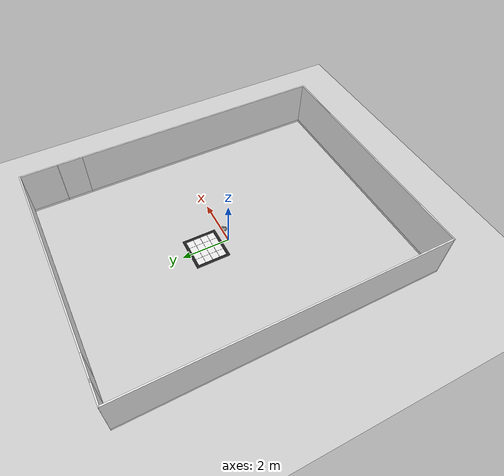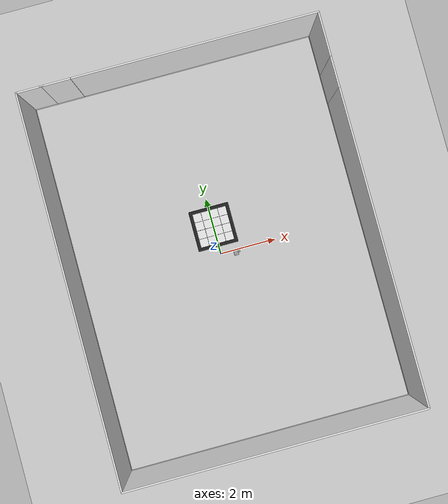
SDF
<sdf version="1.6">
 <world name="megaweb">
  <physics name="default_physics" default="0" type="ode">
   <max_step_size>0.001</max_step_size>
   <real_time_factor>1</real_time_factor>
   <real_time_update_rate>1000</real_time_update_rate>
  </physics>
  <scene><ambient>1 1 1 1</ambient><background>0.7 0.7 0.7 1</background><shadows>1</shadows></scene>
  <model name="ground_plane">
   <static>1</static>
   <link name="link">
    <collision name="collision">
     <geometry><plane><normal>0 0 1</normal><size>100 100</size></plane></geometry>
     <surface><friction><ode><mu>100</mu><mu2>50</mu2></ode></friction></surface>
    </collision>
    <visual name="visual">
     <cast_shadows>0</cast_shadows>
     <geometry><plane><normal>0 0 1</normal><size>100 100</size></plane></geometry>
     <material>
      <script><uri>file://media/materials/scripts/gazebo.material</uri><name>Gazebo/Grey</name></script>
     </material>
    </visual>
   </link>
  </model>
  <light name="floorlight1" type="spot">
   <pose>-3 -3 4 0 -0 0</pose>
   <diffuse>0.8 0.8 0.8 1</diffuse>
   <specular>0.2 0.2 0.2 1</specular>
   <attenuation>
    <range>10</range>
    <constant>0.9</constant>
    <linear>0.2</linear>
    <quadratic>0.001</quadratic>
   </attenuation>
   <spot><inner_angle>0.1</inner_angle><outer_angle>3.14</outer_angle><falloff>0.01</falloff></spot>
   <direction>0 0 -1</direction>
  </light>
  <light name="floorlight2" type="spot">
   <pose>-6 -3 4 0 -0 0</pose>
   <diffuse>0.8 0.8 0.8 1</diffuse>
   <specular>0.2 0.2 0.2 1</specular>
   <attenuation>
    <range>10</range>
    <constant>0.9</constant>
    <linear>0.2</linear>
    <quadratic>0.001</quadratic>
   </attenuation>
   <spot><inner_angle>0.1</inner_angle><outer_angle>3.14</outer_angle><falloff>0.01</falloff></spot>
   <direction>0 0 -1</direction>
  </light>
  <light name="floorlight3" type="spot">
   <pose>-3 -6 4 0 -0 0</pose>
   <diffuse>0.8 0.8 0.8 1</diffuse>
   <specular>0.2 0.2 0.2 1</specular>
   <attenuation>
    <range>10</range>
    <constant>0.9</constant>
    <linear>0.2</linear>
    <quadratic>0.001</quadratic>
   </attenuation>
   <spot><inner_angle>0.1</inner_angle><outer_angle>3.14</outer_angle><falloff>0.01</falloff></spot>
   <direction>0 0 -1</direction>
  </light>
  <light name="floorlight4" type="spot">
   <pose>-6 -6 4 0 -0 0</pose>
   <diffuse>0.8 0.8 0.8 1</diffuse>
   <specular>0.2 0.2 0.2 1</specular>
   <attenuation>
    <range>10</range>
    <constant>0.9</constant>
    <linear>0.2</linear>
    <quadratic>0.001</quadratic>
   </attenuation>
   <spot><inner_angle>0.1</inner_angle><outer_angle>3.14</outer_angle><falloff>0.01</falloff></spot>
   <direction>0 0 -1</direction>
  </light>
  <gravity>0 0 -9.8</gravity>
  <magnetic_field>6e-06 2.3e-05 -4.2e-05</magnetic_field>
  <atmosphere type="adiabatic"/>
  <spherical_coordinates>
   <surface_model>EARTH_WGS84</surface_model>
   <latitude_deg>0</latitude_deg>
   <longitude_deg>0</longitude_deg>
   <elevation>0</elevation>
   <heading_deg>0</heading_deg>
  </spherical_coordinates>
  <model name="full_outside_wall">
   <link name="link">
    <inertial>
     <mass>50</mass>
     <inertia><ixx>1</ixx><ixy>0</ixy><ixz>0</ixz><iyy>1</iyy><iyz>0</iyz><izz>1</izz></inertia>
    </inertial>
    <visual name="x00_13y00_bottom_frame">
     <pose>5.0375 -0.0275 0.05 0 -0 0</pose>
     <geometry><box><size>10.185 0.055 0.1</size></box></geometry>
     <material>
      <script><uri>model://base_materials/color/scripts</uri><name>hsr_color/white</name></script>
     </material>
    </visual>
    <collision name="x00_13y00_collision_bottom_frame">
     <pose>5.0375 -0.0275 0.05 0 -0 0</pose>
     <geometry><box><size>10.185 0.055 0.1</size></box></geometry>
    </collision>
    <visual name="wall_x00_13y00">
     <pose>5.0375 -0.0275 1.095 0 -0 0</pose>
     <geometry><box><size>10.185 0.055 1.99</size></box></geometry>
     <material>
      <script>
       <uri>model://base_materials/wall/scripts</uri>
       <uri>model://base_materials/wall/textures</uri>
       <name>wall/white_noise</name>
      </script>
     </material>
    </visual>
    <collision name="wall_x00_13y00">
     <pose>5.0375 -0.002 1.095 0 -0 0</pose>
     <geometry><box><size>10.08 0.055 1.99</size></box></geometry>
    </collision>
    <visual name="x00y00_15_bottom_frame">
     <pose>-0.0275 6.59 0.05 0 -0 0</pose>
     <geometry><box><size>0.055 13.29 0.1</size></box></geometry>
     <material>
      <script><uri>model://base_materials/color/scripts</uri><name>hsr_color/white</name></script>
     </material>
    </visual>
    <collision name="x00y00_15_collision_bottom_frame">
     <pose>-0.0275 6.59 0.05 0 -0 0</pose>
     <geometry><box><size>0.055 13.29 0.1</size></box></geometry>
    </collision>
    <visual name="wall_x00y00_15">
     <pose>-0.0275 6.59 1.095 0 -0 0</pose>
     <geometry><box><size>0.055 13.29 1.99</size></box></geometry>
     <material>
      <script>
       <uri>model://base_materials/wall/scripts</uri>
       <uri>model://base_materials/wall/textures</uri>
       <name>wall/white_noise</name>
      </script>
     </material>
    </visual>
    <collision name="wall_x00y00_x00y15">
     <pose>-0.002 6.59 1.095 0 -0 0</pose>
     <geometry><box><size>0.002 13.29 1.99</size></box></geometry>
    </collision>
    <visual name="x13y00_12_bottom_frame">
     <pose>10.1025 5.3725 0.05 0 -0 0</pose>
     <geometry><box><size>0.055 10.855 0.1</size></box></geometry>
     <material>
      <script><uri>model://base_materials/color/scripts</uri><name>hsr_color/white</name></script>
     </material>
    </visual>
    <collision name="x13y00_12_collision_bottom_frame">
     <pose>10.1025 5.3725 0.05 0 -0 0</pose>
     <geometry><box><size>0.055 10.855 0.1</size></box></geometry>
    </collision>
    <visual name="wall_x13y00_12">
     <pose>10.1025 5.3725 1.095 0 -0 0</pose>
     <geometry><box><size>0.055 10.855 1.99</size></box></geometry>
     <material>
      <script>
       <uri>model://base_materials/wall/scripts</uri>
       <uri>model://base_materials/wall/textures</uri>
       <name>wall/white_noise</name>
      </script>
     </material>
    </visual>
    <collision name="wall_x13y00_12">
     <pose>10.1025 5.3725 1.095 0 -0 0</pose>
     <geometry><box><size>0.055 10.855 1.99</size></box></geometry>
    </collision>
    <visual name="x13y14_16_bottom_frame">
     <pose>10.1025 12.4675 0.05 0 -0 0</pose>
     <geometry><box><size>0.055 1.535 0.1</size></box></geometry>
     <material>
      <script><uri>model://base_materials/color/scripts</uri><name>hsr_color/white</name></script>
     </material>
    </visual>
    <collision name="x13y14_16_collision_bottom_frame">
     <pose>10.1025 12.4675 0.05 0 -0 0</pose>
     <geometry><box><size>0.055 1.535 0.1</size></box></geometry>
    </collision>
    <visual name="wall_x13y14_x13y16">
     <pose>10.1025 12.4675 1.095 0 -0 0</pose>
     <geometry><box><size>0.055 1.535 1.99</size></box></geometry>
     <material>
      <script>
       <uri>model://base_materials/wall/scripts</uri>
       <uri>model://base_materials/wall/textures</uri>
       <name>wall/white_noise</name>
      </script>
     </material>
    </visual>
    <collision name="wall_x13y14_x13y16">
     <pose>10.1025 12.4675 1.095 0 -0 0</pose>
     <geometry><box><size>0.055 1.535 1.99</size></box></geometry>
    </collision>
    <visual name="x00_01y16_bottom_frame">
     <pose>0.4225 13.2075 0.05 0 -0 0</pose>
     <geometry><box><size>0.955 0.055 0.1</size></box></geometry>
     <material>
      <script><uri>model://base_materials/color/scripts</uri><name>hsr_color/white</name></script>
     </material>
    </visual>
    <collision name="x00_01y16_collision_bottom_frame">
     <pose>0.4225 13.2075 0.05 0 -0 0</pose>
     <geometry><box><size>0.955 0.055 0.1</size></box></geometry>
    </collision>
    <visual name="wall_x00_01y16">
     <pose>0.4225 13.2075 1.095 0 -0 0</pose>
     <geometry><box><size>0.955 0.055 1.99</size></box></geometry>
     <material>
      <script>
       <uri>model://base_materials/wall/scripts</uri>
       <uri>model://base_materials/wall/textures</uri>
       <name>wall/white_noise</name>
      </script>
     </material>
    </visual>
    <collision name="wall_x00_x01y16">
     <pose>0.4225 13.2075 1.095 0 -0 0</pose>
     <geometry><box><size>0.955 0.055 1.99</size></box></geometry>
    </collision>
    <visual name="x03_13y16_bottom_frame">
     <pose>5.965 13.2075 0.05 0 -0 0</pose>
     <geometry><box><size>8.33 0.05 0.1</size></box></geometry>
     <material>
      <script><uri>model://base_materials/color/scripts</uri><name>hsr_color/white</name></script>
     </material>
    </visual>
    <collision name="x03_13y16_collision_bottom_frame">
     <pose>5.965 13.2075 0.05 0 -0 0</pose>
     <geometry><box><size>8.33 0.05 0.1</size></box></geometry>
    </collision>
    <visual name="wall_x03_13y16">
     <pose>5.965 13.2075 1.095 0 -0 0</pose>
     <geometry><box><size>8.33 0.055 1.99</size></box></geometry>
     <material>
      <script>
       <uri>model://base_materials/wall/scripts</uri>
       <uri>model://base_materials/wall/textures</uri>
       <name>wall/white_noise</name>
      </script>
     </material>
    </visual>
    <collision name="wall_x03_13y16">
     <pose>5.965 13.2075 1.095 0 -0 0</pose>
     <geometry><box><size>8.33 0.055 1.99</size></box></geometry>
    </collision>
    <velocity_decay><linear>0</linear><angular>0</angular></velocity_decay>
   </link>
   <static>1</static>
   <pose>-5 -6.5 0 0 -0 0</pose>
  </model>
  <model name="full_wall_55_900_2090">
   <link name="link">
    <inertial>
     <mass>50</mass>
     <inertia><ixx>1</ixx><ixy>0</ixy><ixz>0</ixz><iyy>1</iyy><iyz>0</iyz><izz>1</izz></inertia>
    </inertial>
    <visual name="bottom_frame">
     <pose>0 0 0.05 0 -0 0</pose>
     <geometry><box><size>0.055 1.04 0.1</size></box></geometry>
     <material>
      <script><uri>model://base_materials/color/scripts</uri><name>hsr_color/white</name></script>
     </material>
    </visual>
    <collision name="collision_bottom_frame">
     <pose>0 0 0.05 0 -0 0</pose>
     <geometry><box><size>0.055 1.04 0.1</size></box></geometry>
    </collision>
    <visual name="wall">
     <pose>0 0 1.095 0 -0 0</pose>
     <geometry><box><size>0.055 1.04 1.99</size></box></geometry>
     <material>
      <script>
       <uri>model://base_materials/wall/scripts</uri>
       <uri>model://base_materials/wall/textures</uri>
       <name>wall/white_noise</name>
      </script>
     </material>
    </visual>
    <collision name="collision_wall">
     <pose>0 0 1.095 0 -0 0</pose>
     <geometry><box><size>0.055 1.04 1.99</size></box></geometry>
    </collision>
    <velocity_decay><linear>0</linear><angular>0</angular></velocity_decay>
   </link>
   <static>1</static>
   <pose>5.1 4.67156 0 0 -0 0</pose>
  </model>
  <model name="full_wall_55_900_2090_0">
   <link name="link">
    <inertial>
     <mass>50</mass>
     <inertia><ixx>1</ixx><ixy>0</ixy><ixz>0</ixz><iyy>1</iyy><iyz>0</iyz><izz>1</izz></inertia>
    </inertial>
    <visual name="bottom_frame">
     <pose>0 0 0.05 0 -0 0</pose>
     <geometry><box><size>0.055 1.04 0.1</size></box></geometry>
     <material>
      <script><uri>model://base_materials/color/scripts</uri><name>hsr_color/white</name></script>
     </material>
    </visual>
    <collision name="collision_bottom_frame">
     <pose>0 0 0.05 0 -0 0</pose>
     <geometry><box><size>0.055 1.04 0.1</size></box></geometry>
    </collision>
    <visual name="wall">
     <pose>0 0 1.095 0 -0 0</pose>
     <geometry><box><size>0.055 1.04 1.99</size></box></geometry>
     <material>
      <script>
       <uri>model://base_materials/wall/scripts</uri>
       <uri>model://base_materials/wall/textures</uri>
       <name>wall/white_noise</name>
      </script>
     </material>
    </visual>
    <collision name="collision_wall">
     <pose>0 0 1.095 0 -0 0</pose>
     <geometry><box><size>0.055 1.04 1.99</size></box></geometry>
    </collision>
    <velocity_decay><linear>0</linear><angular>0</angular></velocity_decay>
   </link>
   <static>1</static>
   <pose>-3.72484 6.70714 0 0 -0 1.57</pose>
  </model>
  <model name="unit_box">
   <static>1</static>
   <pose>0 1 0.0005 -1e-05 0 0</pose>
   <link name="link">
    <inertial>
     <mass>1</mass>
     <inertia>
      <ixx>0.166667</ixx>
      <ixy>0</ixy>
      <ixz>0</ixz>
      <iyy>0.166667</iyy>
      <iyz>0</iyz>
      <izz>0.166667</izz>
     </inertia>
    </inertial>
    <visual name="visual">
     <geometry><box><size>1.45 1.45 0.01</size></box></geometry>
     <material>
      <script>
       <name>Gazebo/Black</name>
       <uri>/usr/share/gazebo-7/media/materials/scripts/gazebo.material</uri>
      </script>
     </material>
    </visual>
   </link>
  </model>
  <model name="unit_box_0">
   <static>1</static>
   <pose>0.4575 1.4575 0.001 0 -0 0</pose>
   <link name="link">
    <inertial>
     <mass>1</mass>
     <inertia>
      <ixx>0.166667</ixx>
      <ixy>0</ixy>
      <ixz>0</ixz>
      <iyy>0.166667</iyy>
      <iyz>0</iyz>
      <izz>0.166667</izz>
     </inertia>
    </inertial>
    <visual name="visual">
     <geometry><box><size>0.3 0.3 0.01</size></box></geometry>
     <material>
      <script>
       <name>Gazebo/White</name>
       <uri>/usr/share/gazebo-7/media/materials/scripts/gazebo.material</uri>
      </script>
     </material>
    </visual>
   </link>
  </model>
  <model name="unit_box_0_clone">
   <static>1</static>
   <pose>0.4575 1.1525 0.001 0 -0 0</pose>
   <link name="link">
    <inertial>
     <mass>1</mass>
     <inertia>
      <ixx>0.166667</ixx>
      <ixy>0</ixy>
      <ixz>0</ixz>
      <iyy>0.166667</iyy>
      <iyz>0</iyz>
      <izz>0.166667</izz>
     </inertia>
    </inertial>
    <visual name="visual">
     <geometry><box><size>0.3 0.3 0.01</size></box></geometry>
     <material>
      <script>
       <name>Gazebo/White</name>
       <uri>/usr/share/gazebo-7/media/materials/scripts/gazebo.material</uri>
      </script>
     </material>
    </visual>
   </link>
  </model>
  <model name="unit_box_0_clone_0">
   <static>1</static>
   <pose>0.4575 0.8475 0.001 0 -0 0</pose>
   <link name="link">
    <inertial>
     <mass>1</mass>
     <inertia>
      <ixx>0.166667</ixx>
      <ixy>0</ixy>
      <ixz>0</ixz>
      <iyy>0.166667</iyy>
      <iyz>0</iyz>
      <izz>0.166667</izz>
     </inertia>
    </inertial>
    <visual name="visual">
     <geometry><box><size>0.3 0.3 0.01</size></box></geometry>
     <material>
      <script>
       <name>Gazebo/White</name>
       <uri>/usr/share/gazebo-7/media/materials/scripts/gazebo.material</uri>
      </script>
     </material>
    </visual>
   </link>
  </model>
  <model name="unit_box_0_clone_1">
   <static>1</static>
   <pose>0.4575 0.5425 0.001 0 -0 0</pose>
   <link name="link">
    <inertial>
     <mass>1</mass>
     <inertia>
      <ixx>0.166667</ixx>
      <ixy>0</ixy>
      <ixz>0</ixz>
      <iyy>0.166667</iyy>
      <iyz>0</iyz>
      <izz>0.166667</izz>
     </inertia>
    </inertial>
    <visual name="visual">
     <geometry><box><size>0.3 0.3 0.01</size></box></geometry>
     <material>
      <script>
       <name>Gazebo/White</name>
       <uri>/usr/share/gazebo-7/media/materials/scripts/gazebo.material</uri>
      </script>
     </material>
    </visual>
   </link>
  </model>
  <model name="unit_box_0_clone_2">
   <static>1</static>
   <pose>0.1525 1.4575 0.001 0 -0 0</pose>
   <link name="link">
    <inertial>
     <mass>1</mass>
     <inertia>
      <ixx>0.166667</ixx>
      <ixy>0</ixy>
      <ixz>0</ixz>
      <iyy>0.166667</iyy>
      <iyz>0</iyz>
      <izz>0.166667</izz>
     </inertia>
    </inertial>
    <visual name="visual">
     <geometry><box><size>0.3 0.3 0.01</size></box></geometry>
     <material>
      <script>
       <name>Gazebo/White</name>
       <uri>/usr/share/gazebo-7/media/materials/scripts/gazebo.material</uri>
      </script>
     </material>
    </visual>
   </link>
  </model>
  <model name="unit_box_0_clone_3">
   <static>1</static>
   <pose>0.1525 1.1525 0.001 0 -0 0</pose>
   <link name="link">
    <inertial>
     <mass>1</mass>
     <inertia>
      <ixx>0.166667</ixx>
      <ixy>0</ixy>
      <ixz>0</ixz>
      <iyy>0.166667</iyy>
      <iyz>0</iyz>
      <izz>0.166667</izz>
     </inertia>
    </inertial>
    <visual name="visual">
     <geometry><box><size>0.3 0.3 0.01</size></box></geometry>
     <material>
      <script>
       <name>Gazebo/White</name>
       <uri>/usr/share/gazebo-7/media/materials/scripts/gazebo.material</uri>
      </script>
     </material>
    </visual>
   </link>
  </model>
  <model name="unit_box_0_clone_4">
   <static>1</static>
   <pose>0.1525 0.8475 0.001 0 -0 0</pose>
   <link name="link">
    <inertial>
     <mass>1</mass>
     <inertia>
      <ixx>0.166667</ixx>
      <ixy>0</ixy>
      <ixz>0</ixz>
      <iyy>0.166667</iyy>
      <iyz>0</iyz>
      <izz>0.166667</izz>
     </inertia>
    </inertial>
    <visual name="visual">
     <geometry><box><size>0.3 0.3 0.01</size></box></geometry>
     <material>
      <script>
       <name>Gazebo/White</name>
       <uri>/usr/share/gazebo-7/media/materials/scripts/gazebo.material</uri>
      </script>
     </material>
    </visual>
   </link>
  </model>
  <model name="unit_box_0_clone_5">
   <static>1</static>
   <pose>0.1525 0.5425 0.001 0 -0 0</pose>
   <link name="link">
    <inertial>
     <mass>1</mass>
     <inertia>
      <ixx>0.166667</ixx>
      <ixy>0</ixy>
      <ixz>0</ixz>
      <iyy>0.166667</iyy>
      <iyz>0</iyz>
      <izz>0.166667</izz>
     </inertia>
    </inertial>
    <visual name="visual">
     <geometry><box><size>0.3 0.3 0.01</size></box></geometry>
     <material>
      <script>
       <name>Gazebo/White</name>
       <uri>/usr/share/gazebo-7/media/materials/scripts/gazebo.material</uri>
      </script>
     </material>
    </visual>
   </link>
  </model>
  <model name="unit_box_0_clone_6">
   <static>1</static>
   <pose>-0.1525 1.4575 0.001 0 -0 0</pose>
   <link name="link">
    <inertial>
     <mass>1</mass>
     <inertia>
      <ixx>0.166667</ixx>
      <ixy>0</ixy>
      <ixz>0</ixz>
      <iyy>0.166667</iyy>
      <iyz>0</iyz>
      <izz>0.166667</izz>
     </inertia>
    </inertial>
    <visual name="visual">
     <geometry><box><size>0.3 0.3 0.01</size></box></geometry>
     <material>
      <script>
       <name>Gazebo/White</name>
       <uri>/usr/share/gazebo-7/media/materials/scripts/gazebo.material</uri>
      </script>
     </material>
    </visual>
   </link>
  </model>
  <model name="unit_box_0_clone_7">
   <static>1</static>
   <pose>-0.1525 1.1525 0.001 0 -0 0</pose>
   <link name="link">
    <inertial>
     <mass>1</mass>
     <inertia>
      <ixx>0.166667</ixx>
      <ixy>0</ixy>
      <ixz>0</ixz>
      <iyy>0.166667</iyy>
      <iyz>0</iyz>
      <izz>0.166667</izz>
     </inertia>
    </inertial>
    <visual name="visual">
     <geometry><box><size>0.3 0.3 0.01</size></box></geometry>
     <material>
      <script>
       <name>Gazebo/White</name>
       <uri>/usr/share/gazebo-7/media/materials/scripts/gazebo.material</uri>
      </script>
     </material>
    </visual>
   </link>
  </model>
  <model name="unit_box_0_clone_8">
   <static>1</static>
   <pose>-0.1525 0.8475 0.001 0 -0 0</pose>
   <link name="link">
    <inertial>
     <mass>1</mass>
     <inertia>
      <ixx>0.166667</ixx>
      <ixy>0</ixy>
      <ixz>0</ixz>
      <iyy>0.166667</iyy>
      <iyz>0</iyz>
      <izz>0.166667</izz>
     </inertia>
    </inertial>
    <visual name="visual">
     <geometry><box><size>0.3 0.3 0.01</size></box></geometry>
     <material>
      <script>
       <name>Gazebo/White</name>
       <uri>/usr/share/gazebo-7/media/materials/scripts/gazebo.material</uri>
      </script>
     </material>
    </visual>
   </link>
  </model>
  <model name="unit_box_0_clone_9">
   <static>1</static>
   <pose>-0.1525 0.5425 0.001 0 -0 0</pose>
   <link name="link">
    <inertial>
     <mass>1</mass>
     <inertia>
      <ixx>0.166667</ixx>
      <ixy>0</ixy>
      <ixz>0</ixz>
      <iyy>0.166667</iyy>
      <iyz>0</iyz>
      <izz>0.166667</izz>
     </inertia>
    </inertial>
    <visual name="visual">
     <geometry><box><size>0.3 0.3 0.01</size></box></geometry>
     <material>
      <script>
       <name>Gazebo/White</name>
       <uri>/usr/share/gazebo-7/media/materials/scripts/gazebo.material</uri>
      </script>
     </material>
    </visual>
   </link>
  </model>
  <model name="unit_box_0_clone_10">
   <static>1</static>
   <pose>-0.4575 1.4575 0.001 0 -0 0</pose>
   <link name="link">
    <inertial>
     <mass>1</mass>
     <inertia>
      <ixx>0.166667</ixx>
      <ixy>0</ixy>
      <ixz>0</ixz>
      <iyy>0.166667</iyy>
      <iyz>0</iyz>
      <izz>0.166667</izz>
     </inertia>
    </inertial>
    <visual name="visual">
     <geometry><box><size>0.3 0.3 0.01</size></box></geometry>
     <material>
      <script>
       <name>Gazebo/White</name>
       <uri>/usr/share/gazebo-7/media/materials/scripts/gazebo.material</uri>
      </script>
     </material>
    </visual>
   </link>
  </model>
  <model name="unit_box_0_clone_11">
   <static>1</static>
   <pose>-0.4575 1.1525 0.001 0 -0 0</pose>
   <link name="link">
    <inertial>
     <mass>1</mass>
     <inertia>
      <ixx>0.166667</ixx>
      <ixy>0</ixy>
      <ixz>0</ixz>
      <iyy>0.166667</iyy>
      <iyz>0</iyz>
      <izz>0.166667</izz>
     </inertia>
    </inertial>
    <visual name="visual">
     <geometry><box><size>0.3 0.3 0.01</size></box></geometry>
     <material>
      <script>
       <name>Gazebo/White</name>
       <uri>/usr/share/gazebo-7/media/materials/scripts/gazebo.material</uri>
      </script>
     </material>
    </visual>
   </link>
  </model>
  <model name="unit_box_0_clone_12">
   <static>1</static>
   <pose>-0.4575 0.8475 0.001 0 -0 0</pose>
   <link name="link">
    <inertial>
     <mass>1</mass>
     <inertia>
      <ixx>0.166667</ixx>
      <ixy>0</ixy>
      <ixz>0</ixz>
      <iyy>0.166667</iyy>
      <iyz>0</iyz>
      <izz>0.166667</izz>
     </inertia>
    </inertial>
    <visual name="visual">
     <geometry><box><size>0.3 0.3 0.01</size></box></geometry>
     <material>
      <script>
       <name>Gazebo/White</name>
       <uri>/usr/share/gazebo-7/media/materials/scripts/gazebo.material</uri>
      </script>
     </material>
    </visual>
   </link>
  </model>
  <model name="unit_box_0_clone_13">
   <static>1</static>
   <pose>-0.4575 0.5425 0.001 0 -0 0</pose>
   <link name="link">
    <inertial>
     <mass>1</mass>
     <inertia>
      <ixx>0.166667</ixx>
      <ixy>0</ixy>
      <ixz>0</ixz>
      <iyy>0.166667</iyy>
      <iyz>0</iyz>
      <izz>0.166667</izz>
     </inertia>
    </inertial>
    <visual name="visual">
     <geometry><box><size>0.3 0.3 0.01</size></box></geometry>
     <material>
      <script>
       <name>Gazebo/White</name>
       <uri>/usr/share/gazebo-7/media/materials/scripts/gazebo.material</uri>
      </script>
     </material>
    </visual>
   </link>
  </model>
  <model name="first_aid_box">
   <link name="link">
    <inertial>
     <pose>0.034 0 0.04 1.57 -0 0</pose>
     <mass>0.3</mass>
     <inertia><ixx>0.00058</ixx><ixy>0</ixy><ixz>0</ixz><iyy>0.00058</iyy><iyz>0</iyz><izz>0.00019</izz></inertia>
    </inertial>
    <velocity_decay><linear>0</linear><angular>0</angular></velocity_decay>
    <visual name="handle_top">
     <pose>0.11 0 0.085 0 -0 0</pose>
     <geometry><box><size>0.068 0.068 0.002</size></box></geometry>
     <material>
      <script><uri>model://base_materials/color/scripts</uri><name>hsr_color/grey</name></script>
      <shader type="pixel"><normal_map>__default__</normal_map></shader>
      <ambient>1 1 1 1</ambient>
      <diffuse>0.5 0.5 0.5 1</diffuse>
      <specular>0 0 0 1</specular>
      <emissive>0 0 0 1</emissive>
      <lighting>0</lighting>
     </material>
    </visual>
    <visual name="handle_bottom">
     <pose>0.11 0 0.016 0 -0 0</pose>
     <geometry><box><size>0.068 0.068 0.002</size></box></geometry>
     <material>
      <script><uri>model://base_materials/color/scripts</uri><name>hsr_color/grey</name></script>
      <shader type="pixel"><normal_map>__default__</normal_map></shader>
      <ambient>1 1 1 1</ambient>
      <diffuse>0.5 0.5 0.5 1</diffuse>
      <specular>0 0 0 1</specular>
      <emissive>0 0 0 1</emissive>
      <lighting>0</lighting>
     </material>
    </visual>
    <visual name="marker_0513">
     <pose>0.11 0 0.0861 0 -0 3.1415</pose>
     <geometry><box><size>0.045 0.045 0.0001</size></box></geometry>
     <material>
      <script>
       <uri>model://first_aid_box/marker/0513/scripts</uri>
       <uri>model://first_aid_box/marker/0513/textures</uri>
       <name>Marker/0513</name>
      </script>
      <shader type="pixel"><normal_map>__default__</normal_map></shader>
      <ambient>1 1 1 1</ambient>
      <diffuse>1 1 1 1</diffuse>
      <specular>0 0 0 1</specular>
      <emissive>0 0 0 1</emissive>
      <lighting>0</lighting>
     </material>
    </visual>
    <visual name="handle_front">
     <pose>0.138 0 0.05 0 -0 0</pose>
     <geometry><box><size>0.014 0.068 0.068</size></box></geometry>
     <material>
      <script><uri>model://base_materials/color/scripts</uri><name>hsr_color/grey</name></script>
      <shader type="pixel"><normal_map>__default__</normal_map></shader>
      <ambient>1 1 1 1</ambient>
      <diffuse>0.5 0.5 0.5 1</diffuse>
      <specular>0 0 0 1</specular>
      <emissive>0 0 0 1</emissive>
      <lighting>0</lighting>
     </material>
    </visual>
    <visual name="marker_0502">
     <pose>0.145 0 0.05 0 -0 0</pose>
     <geometry><box><size>0.0001 0.045 0.045</size></box></geometry>
     <material>
      <script>
       <uri>model://first_aid_box/marker/0502/scripts</uri>
       <uri>model://first_aid_box/marker/0502/textures</uri>
       <name>Marker/0502</name>
      </script>
      <shader type="pixel"><normal_map>__default__</normal_map></shader>
      <ambient>1 1 1 1</ambient>
      <diffuse>1 1 1 1</diffuse>
      <specular>0 0 0 1</specular>
      <emissive>0 0 0 1</emissive>
      <lighting>0</lighting>
     </material>
    </visual>
    <visual name="box_front">
     <pose>0.076 0 0.043 0 -0 0</pose>
     <geometry><box><size>0.001 0.218 0.085</size></box></geometry>
     <material>
      <script><uri>model://base_materials/color/scripts</uri><name>hsr_color/grey</name></script>
      <shader type="pixel"><normal_map>__default__</normal_map></shader>
      <ambient>1 1 1 1</ambient>
      <diffuse>0.8 0.8 0.8 1</diffuse>
      <specular>0.9 0.9 0.9 1</specular>
      <emissive>0 0 0 1</emissive>
      <lighting>0</lighting>
     </material>
    </visual>
    <visual name="box_back">
     <pose>-0.076 0 0.043 0 -0 0</pose>
     <geometry><box><size>0.001 0.218 0.085</size></box></geometry>
     <material>
      <script><uri>model://base_materials/color/scripts</uri><name>hsr_color/grey</name></script>
      <shader type="pixel"><normal_map>__default__</normal_map></shader>
      <ambient>1 1 1 1</ambient>
      <diffuse>0.8 0.8 0.8 1</diffuse>
      <specular>0.9 0.9 0.9 1</specular>
      <emissive>0 0 0 1</emissive>
      <lighting>0</lighting>
     </material>
    </visual>
    <visual name="box_right">
     <pose>0 0.1095 0.043 0 -0 0</pose>
     <geometry><box><size>0.153 0.001 0.085</size></box></geometry>
     <material>
      <script><uri>model://base_materials/color/scripts</uri><name>hsr_color/grey</name></script>
      <shader type="pixel"><normal_map>__default__</normal_map></shader>
      <ambient>1 1 1 1</ambient>
      <diffuse>0.8 0.8 0.8 1</diffuse>
      <specular>0.9 0.9 0.9 1</specular>
      <emissive>0 0 0 1</emissive>
      <lighting>0</lighting>
     </material>
    </visual>
    <visual name="box_left">
     <pose>0 -0.1095 0.043 0 -0 0</pose>
     <geometry><box><size>0.153 0.001 0.085</size></box></geometry>
     <material>
      <script><uri>model://base_materials/color/scripts</uri><name>hsr_color/grey</name></script>
      <shader type="pixel"><normal_map>__default__</normal_map></shader>
      <ambient>1 1 1 1</ambient>
      <diffuse>0.8 0.8 0.8 1</diffuse>
      <specular>0.9 0.9 0.9 1</specular>
      <emissive>0 0 0 1</emissive>
      <lighting>0</lighting>
     </material>
    </visual>
    <visual name="box_bottom">
     <pose>0 0 0.001 0 -0 0</pose>
     <geometry><box><size>0.151 0.218 0.002</size></box></geometry>
     <material>
      <script><uri>model://base_materials/color/scripts</uri><name>hsr_color/grey</name></script>
      <shader type="pixel"><normal_map>__default__</normal_map></shader>
      <ambient>1 1 1 1</ambient>
      <diffuse>0.8 0.8 0.8 1</diffuse>
      <specular>0.9 0.9 0.9 1</specular>
      <emissive>0 0 0 1</emissive>
      <lighting>0</lighting>
     </material>
    </visual>
    <collision name="collision_handle_top">
     <pose>0.11 0 0.085 0 -0 0</pose>
     <geometry><box><size>0.068 0.068 0.002</size></box></geometry>
     <surface>
      <friction>
       <ode><mu>1</mu><mu2>1</mu2><fdir1>0 0 0</fdir1><slip1>0</slip1><slip2>0</slip2></ode>
       <torsional>
        <coefficient>1</coefficient>
        <patch_radius>0</patch_radius>
        <surface_radius>0</surface_radius>
        <use_patch_radius>1</use_patch_radius>
        <ode><slip>0</slip></ode>
       </torsional>
      </friction>
      <bounce><restitution_coefficient>0.2</restitution_coefficient><threshold>0</threshold></bounce>
      <contact>
       <collide_without_contact>0</collide_without_contact>
       <collide_without_contact_bitmask>1</collide_without_contact_bitmask>
       <collide_bitmask>1</collide_bitmask>
       <ode>
        <soft_cfm>0</soft_cfm>
        <soft_erp>0.2</soft_erp>
        <kp>1e+13</kp>
        <kd>1</kd>
        <max_vel>10</max_vel>
        <min_depth>0</min_depth>
       </ode>
       <bullet>
        <split_impulse>1</split_impulse>
        <split_impulse_penetration_threshold>-0.01</split_impulse_penetration_threshold>
        <soft_cfm>0</soft_cfm>
        <soft_erp>0.2</soft_erp>
        <kp>1e+13</kp>
        <kd>1</kd>
       </bullet>
      </contact>
     </surface>
    </collision>
    <collision name="collision_handle_bottom">
     <pose>0.11 0 0.016 0 -0 0</pose>
     <geometry><box><size>0.068 0.068 0.002</size></box></geometry>
     <surface>
      <friction>
       <ode><mu>1</mu><mu2>1</mu2><fdir1>0 0 0</fdir1><slip1>0</slip1><slip2>0</slip2></ode>
       <torsional>
        <coefficient>1</coefficient>
        <patch_radius>0</patch_radius>
        <surface_radius>0</surface_radius>
        <use_patch_radius>1</use_patch_radius>
        <ode><slip>0</slip></ode>
       </torsional>
      </friction>
      <bounce><restitution_coefficient>0.2</restitution_coefficient><threshold>0</threshold></bounce>
      <contact>
       <collide_without_contact>0</collide_without_contact>
       <collide_without_contact_bitmask>1</collide_without_contact_bitmask>
       <collide_bitmask>1</collide_bitmask>
       <ode>
        <soft_cfm>0</soft_cfm>
        <soft_erp>0.2</soft_erp>
        <kp>1e+13</kp>
        <kd>1</kd>
        <max_vel>10</max_vel>
        <min_depth>0</min_depth>
       </ode>
       <bullet>
        <split_impulse>1</split_impulse>
        <split_impulse_penetration_threshold>-0.01</split_impulse_penetration_threshold>
        <soft_cfm>0</soft_cfm>
        <soft_erp>0.2</soft_erp>
        <kp>1e+13</kp>
        <kd>1</kd>
       </bullet>
      </contact>
     </surface>
    </collision>
    <collision name="collision_box_front">
     <pose>0.076 0 0.043 0 -0 0</pose>
     <geometry><box><size>0.001 0.218 0.085</size></box></geometry>
     <surface>
      <friction>
       <ode><mu>1</mu><mu2>1</mu2><fdir1>0 0 0</fdir1><slip1>0</slip1><slip2>0</slip2></ode>
       <torsional>
        <coefficient>1</coefficient>
        <patch_radius>0</patch_radius>
        <surface_radius>0</surface_radius>
        <use_patch_radius>1</use_patch_radius>
        <ode><slip>0</slip></ode>
       </torsional>
      </friction>
      <bounce><restitution_coefficient>0.2</restitution_coefficient><threshold>0</threshold></bounce>
      <contact>
       <collide_without_contact>0</collide_without_contact>
       <collide_without_contact_bitmask>1</collide_without_contact_bitmask>
       <collide_bitmask>1</collide_bitmask>
       <ode>
        <soft_cfm>0</soft_cfm>
        <soft_erp>0.2</soft_erp>
        <kp>1e+13</kp>
        <kd>1</kd>
        <max_vel>10</max_vel>
        <min_depth>0</min_depth>
       </ode>
       <bullet>
        <split_impulse>1</split_impulse>
        <split_impulse_penetration_threshold>-0.01</split_impulse_penetration_threshold>
        <soft_cfm>0</soft_cfm>
        <soft_erp>0.2</soft_erp>
        <kp>1e+13</kp>
        <kd>1</kd>
       </bullet>
      </contact>
     </surface>
    </collision>
    <collision name="collision_handle_front">
     <pose>0.138 0 0.05 0 -0 0</pose>
     <geometry><box><size>0.014 0.068 0.068</size></box></geometry>
     <surface>
      <friction>
       <ode><mu>1</mu><mu2>1</mu2><fdir1>0 0 0</fdir1><slip1>0</slip1><slip2>0</slip2></ode>
       <torsional>
        <coefficient>1</coefficient>
        <patch_radius>0</patch_radius>
        <surface_radius>0</surface_radius>
        <use_patch_radius>1</use_patch_radius>
        <ode><slip>0</slip></ode>
       </torsional>
      </friction>
      <bounce><restitution_coefficient>0.2</restitution_coefficient><threshold>0</threshold></bounce>
      <contact>
       <collide_without_contact>0</collide_without_contact>
       <collide_without_contact_bitmask>1</collide_without_contact_bitmask>
       <collide_bitmask>1</collide_bitmask>
       <ode>
        <soft_cfm>0</soft_cfm>
        <soft_erp>0.2</soft_erp>
        <kp>1e+13</kp>
        <kd>1</kd>
        <max_vel>10</max_vel>
        <min_depth>0</min_depth>
       </ode>
       <bullet>
        <split_impulse>1</split_impulse>
        <split_impulse_penetration_threshold>-0.01</split_impulse_penetration_threshold>
        <soft_cfm>0</soft_cfm>
        <soft_erp>0.2</soft_erp>
        <kp>1e+13</kp>
        <kd>1</kd>
       </bullet>
      </contact>
     </surface>
    </collision>
    <collision name="collision_box_back">
     <pose>-0.076 0 0.043 0 -0 0</pose>
     <geometry><box><size>0.001 0.218 0.085</size></box></geometry>
     <surface>
      <friction>
       <ode><mu>1</mu><mu2>1</mu2><fdir1>0 0 0</fdir1><slip1>0</slip1><slip2>0</slip2></ode>
       <torsional>
        <coefficient>1</coefficient>
        <patch_radius>0</patch_radius>
        <surface_radius>0</surface_radius>
        <use_patch_radius>1</use_patch_radius>
        <ode><slip>0</slip></ode>
       </torsional>
      </friction>
      <bounce><restitution_coefficient>0.2</restitution_coefficient><threshold>0</threshold></bounce>
      <contact>
       <collide_without_contact>0</collide_without_contact>
       <collide_without_contact_bitmask>1</collide_without_contact_bitmask>
       <collide_bitmask>1</collide_bitmask>
       <ode>
        <soft_cfm>0</soft_cfm>
        <soft_erp>0.2</soft_erp>
        <kp>1e+13</kp>
        <kd>1</kd>
        <max_vel>10</max_vel>
        <min_depth>0</min_depth>
       </ode>
       <bullet>
        <split_impulse>1</split_impulse>
        <split_impulse_penetration_threshold>-0.01</split_impulse_penetration_threshold>
        <soft_cfm>0</soft_cfm>
        <soft_erp>0.2</soft_erp>
        <kp>1e+13</kp>
        <kd>1</kd>
       </bullet>
      </contact>
     </surface>
    </collision>
    <collision name="collision_box_bottom">
     <pose>0 0 0.001 0 -0 0</pose>
     <geometry><box><size>0.151 0.218 0.002</size></box></geometry>
     <surface>
      <friction>
       <ode><mu>1</mu><mu2>1</mu2><fdir1>0 0 0</fdir1><slip1>0</slip1><slip2>0</slip2></ode>
       <torsional>
        <coefficient>1</coefficient>
        <patch_radius>0</patch_radius>
        <surface_radius>0</surface_radius>
        <use_patch_radius>1</use_patch_radius>
        <ode><slip>0</slip></ode>
       </torsional>
      </friction>
      <bounce><restitution_coefficient>0.2</restitution_coefficient><threshold>0</threshold></bounce>
      <contact>
       <collide_without_contact>0</collide_without_contact>
       <collide_without_contact_bitmask>1</collide_without_contact_bitmask>
       <collide_bitmask>1</collide_bitmask>
       <ode>
        <soft_cfm>0</soft_cfm>
        <soft_erp>0.2</soft_erp>
        <kp>1e+13</kp>
        <kd>1</kd>
        <max_vel>10</max_vel>
        <min_depth>0</min_depth>
       </ode>
       <bullet>
        <split_impulse>1</split_impulse>
        <split_impulse_penetration_threshold>-0.01</split_impulse_penetration_threshold>
        <soft_cfm>0</soft_cfm>
        <soft_erp>0.2</soft_erp>
        <kp>1e+13</kp>
        <kd>1</kd>
       </bullet>
      </contact>
     </surface>
    </collision>
    <collision name="collision_box_right">
     <pose>0 0.1095 0.043 0 -0 0</pose>
     <geometry><box><size>0.153 0.001 0.085</size></box></geometry>
     <surface>
      <friction>
       <ode><mu>1</mu><mu2>1</mu2><fdir1>0 0 0</fdir1><slip1>0</slip1><slip2>0</slip2></ode>
       <torsional>
        <coefficient>1</coefficient>
        <patch_radius>0</patch_radius>
        <surface_radius>0</surface_radius>
        <use_patch_radius>1</use_patch_radius>
        <ode><slip>0</slip></ode>
       </torsional>
      </friction>
      <bounce><restitution_coefficient>0.2</restitution_coefficient><threshold>0</threshold></bounce>
      <contact>
       <collide_without_contact>0</collide_without_contact>
       <collide_without_contact_bitmask>1</collide_without_contact_bitmask>
       <collide_bitmask>1</collide_bitmask>
       <ode>
        <soft_cfm>0</soft_cfm>
        <soft_erp>0.2</soft_erp>
        <kp>1e+13</kp>
        <kd>1</kd>
        <max_vel>10</max_vel>
        <min_depth>0</min_depth>
       </ode>
       <bullet>
        <split_impulse>1</split_impulse>
        <split_impulse_penetration_threshold>-0.01</split_impulse_penetration_threshold>
        <soft_cfm>0</soft_cfm>
        <soft_erp>0.2</soft_erp>
        <kp>1e+13</kp>
        <kd>1</kd>
       </bullet>
      </contact>
     </surface>
    </collision>
    <collision name="collision_box_left">
     <pose>0 -0.1095 0.043 0 -0 0</pose>
     <geometry><box><size>0.153 0.001 0.085</size></box></geometry>
     <surface>
      <friction>
       <ode><mu>1</mu><mu2>1</mu2><fdir1>0 0 0</fdir1><slip1>0</slip1><slip2>0</slip2></ode>
       <torsional>
        <coefficient>1</coefficient>
        <patch_radius>0</patch_radius>
        <surface_radius>0</surface_radius>
        <use_patch_radius>1</use_patch_radius>
        <ode><slip>0</slip></ode>
       </torsional>
      </friction>
      <bounce><restitution_coefficient>0.2</restitution_coefficient><threshold>0</threshold></bounce>
      <contact>
       <collide_without_contact>0</collide_without_contact>
       <collide_without_contact_bitmask>1</collide_without_contact_bitmask>
       <collide_bitmask>1</collide_bitmask>
       <ode>
        <soft_cfm>0</soft_cfm>
        <soft_erp>0.2</soft_erp>
        <kp>1e+13</kp>
        <kd>1</kd>
        <max_vel>10</max_vel>
        <min_depth>0</min_depth>
       </ode>
       <bullet>
        <split_impulse>1</split_impulse>
        <split_impulse_penetration_threshold>-0.01</split_impulse_penetration_threshold>
        <soft_cfm>0</soft_cfm>
        <soft_erp>0.2</soft_erp>
        <kp>1e+13</kp>
        <kd>1</kd>
       </bullet>
      </contact>
     </surface>
    </collision>
   </link>
   <static>0</static>
   <pose>0.539078 -0.076306 0 0 -2e-06 -0.000219</pose>
  </model>
 </world>
</sdf>
